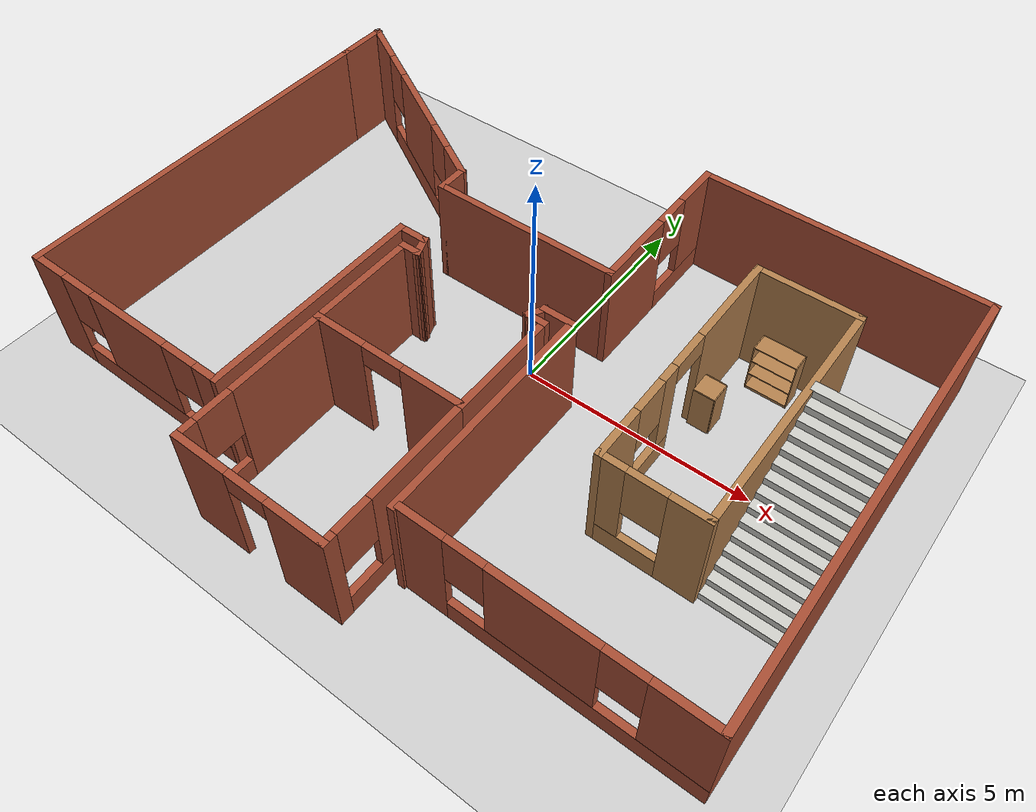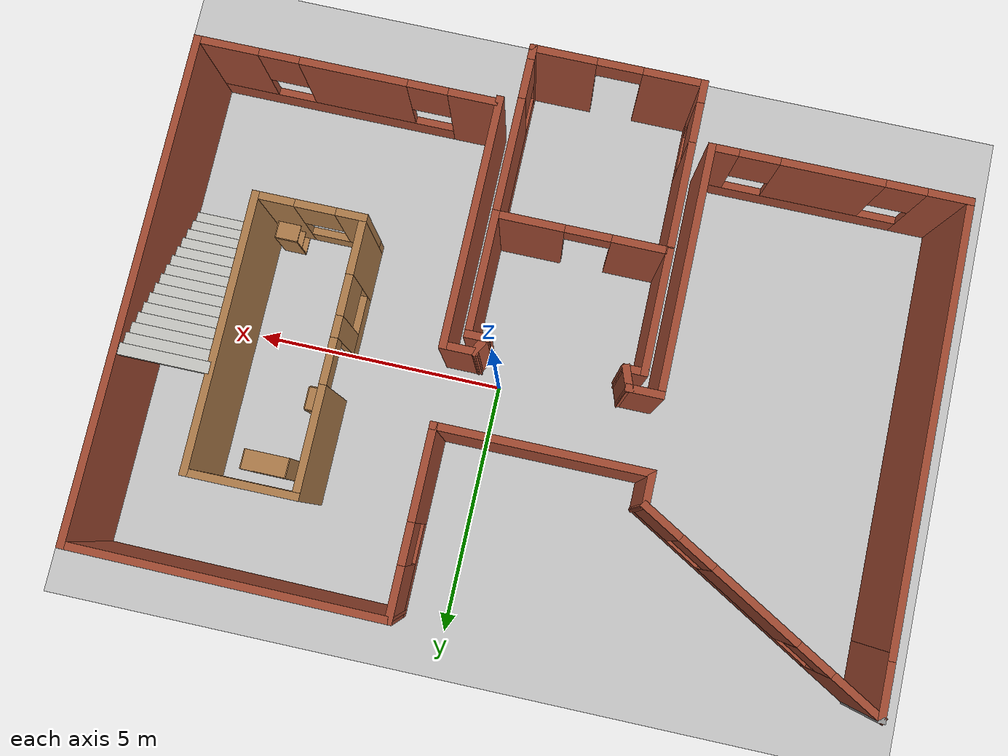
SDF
<sdf version="1.6">
 <world name="default">
  <light name="sun" type="directional">
   <pose>0 0 10 0 -0 0</pose>
   <diffuse>0.8 0.8 0.8 1</diffuse>
   <specular>0.2 0.2 0.2 1</specular>
   <attenuation>
    <range>1000</range>
    <constant>0.9</constant>
    <linear>0.01</linear>
    <quadratic>0.001</quadratic>
   </attenuation>
   <direction>-0.5 0.1 -0.9</direction>
  </light>
  <model name="ground_plane">
   <static>1</static>
   <link name="link">
    <collision name="collision">
     <geometry><plane><normal>0 0 1</normal><size>100 100</size></plane></geometry>
     <surface><friction><ode><mu>100</mu><mu2>50</mu2></ode></friction></surface>
    </collision>
    <visual name="visual">
     <cast_shadows>0</cast_shadows>
     <geometry><plane><normal>0 0 1</normal><size>100 100</size></plane></geometry>
     <material>
      <script><uri>file://media/materials/scripts/gazebo.material</uri><name>Gazebo/Grey</name></script>
     </material>
    </visual>
   </link>
  </model>
  <gravity>0 0 -9.8</gravity>
  <magnetic_field>6e-06 2.3e-05 -4.2e-05</magnetic_field>
  <atmosphere type="adiabatic"/>
  <physics name="default_physics" default="0" type="ode">
   <max_step_size>0.001</max_step_size>
   <real_time_factor>1</real_time_factor>
   <real_time_update_rate>1000</real_time_update_rate>
  </physics>
  <scene><ambient>0.4 0.4 0.4 1</ambient><background>0.7 0.7 0.7 1</background><shadows>1</shadows></scene>
  <spherical_coordinates>
   <surface_model>EARTH_WGS84</surface_model>
   <latitude_deg>0</latitude_deg>
   <longitude_deg>0</longitude_deg>
   <elevation>0</elevation>
   <heading_deg>0</heading_deg>
  </spherical_coordinates>
  <model name="Bad_Design">
   <pose>-0.532956 -0.718389 0 0 -0 0</pose>
   <link name="Stairs_1">
    <visual name="Stairs_1_Visual_0">
     <pose>6.58288 -1.42378 0.083333 0 -0 -3.14159</pose>
     <geometry><box><size>1.74481 0.229787 0.166667</size></box></geometry>
     <material>
      <script><uri>file://media/materials/scripts/gazebo.material</uri><name>Gazebo/CeilingTiled</name></script>
      <ambient>1 1 1 1</ambient>
     </material>
     <meta><layer>0</layer></meta>
    </visual>
    <collision name="Stairs_1_Collision_0">
     <geometry><box><size>1.74481 0.229787 0.166667</size></box></geometry>
     <pose>6.58288 -1.42378 0.083333 0 -0 -3.14159</pose>
    </collision>
    <visual name="Stairs_1_Visual_1">
     <pose>6.58288 -1.194 0.25 0 -0 -3.14159</pose>
     <geometry><box><size>1.74481 0.229787 0.166667</size></box></geometry>
     <material>
      <script><uri>file://media/materials/scripts/gazebo.material</uri><name>Gazebo/CeilingTiled</name></script>
      <ambient>1 1 1 1</ambient>
     </material>
     <meta><layer>0</layer></meta>
    </visual>
    <collision name="Stairs_1_Collision_1">
     <geometry><box><size>1.74481 0.229787 0.166667</size></box></geometry>
     <pose>6.58288 -1.194 0.25 0 -0 -3.14159</pose>
    </collision>
    <visual name="Stairs_1_Visual_2">
     <pose>6.58288 -0.964209 0.416667 0 -0 -3.14159</pose>
     <geometry><box><size>1.74481 0.229787 0.166667</size></box></geometry>
     <material>
      <script><uri>file://media/materials/scripts/gazebo.material</uri><name>Gazebo/CeilingTiled</name></script>
      <ambient>1 1 1 1</ambient>
     </material>
     <meta><layer>0</layer></meta>
    </visual>
    <collision name="Stairs_1_Collision_2">
     <geometry><box><size>1.74481 0.229787 0.166667</size></box></geometry>
     <pose>6.58288 -0.964209 0.416667 0 -0 -3.14159</pose>
    </collision>
    <visual name="Stairs_1_Visual_3">
     <pose>6.58288 -0.734423 0.583333 0 -0 -3.14159</pose>
     <geometry><box><size>1.74481 0.229787 0.166667</size></box></geometry>
     <material>
      <script><uri>file://media/materials/scripts/gazebo.material</uri><name>Gazebo/CeilingTiled</name></script>
      <ambient>1 1 1 1</ambient>
     </material>
     <meta><layer>0</layer></meta>
    </visual>
    <collision name="Stairs_1_Collision_3">
     <geometry><box><size>1.74481 0.229787 0.166667</size></box></geometry>
     <pose>6.58288 -0.734423 0.583333 0 -0 -3.14159</pose>
    </collision>
    <visual name="Stairs_1_Visual_4">
     <pose>6.58288 -0.504636 0.75 0 -0 -3.14159</pose>
     <geometry><box><size>1.74481 0.229787 0.166667</size></box></geometry>
     <material>
      <script><uri>file://media/materials/scripts/gazebo.material</uri><name>Gazebo/CeilingTiled</name></script>
      <ambient>1 1 1 1</ambient>
     </material>
     <meta><layer>0</layer></meta>
    </visual>
    <collision name="Stairs_1_Collision_4">
     <geometry><box><size>1.74481 0.229787 0.166667</size></box></geometry>
     <pose>6.58288 -0.504636 0.75 0 -0 -3.14159</pose>
    </collision>
    <visual name="Stairs_1_Visual_5">
     <pose>6.58288 -0.274849 0.916667 0 -0 -3.14159</pose>
     <geometry><box><size>1.74481 0.229787 0.166667</size></box></geometry>
     <material>
      <script><uri>file://media/materials/scripts/gazebo.material</uri><name>Gazebo/CeilingTiled</name></script>
      <ambient>1 1 1 1</ambient>
     </material>
     <meta><layer>0</layer></meta>
    </visual>
    <collision name="Stairs_1_Collision_5">
     <geometry><box><size>1.74481 0.229787 0.166667</size></box></geometry>
     <pose>6.58288 -0.274849 0.916667 0 -0 -3.14159</pose>
    </collision>
    <visual name="Stairs_1_Visual_6">
     <pose>6.58288 -0.045063 1.08333 0 -0 -3.14159</pose>
     <geometry><box><size>1.74481 0.229787 0.166667</size></box></geometry>
     <material>
      <script><uri>file://media/materials/scripts/gazebo.material</uri><name>Gazebo/CeilingTiled</name></script>
      <ambient>1 1 1 1</ambient>
     </material>
     <meta><layer>0</layer></meta>
    </visual>
    <collision name="Stairs_1_Collision_6">
     <geometry><box><size>1.74481 0.229787 0.166667</size></box></geometry>
     <pose>6.58288 -0.045063 1.08333 0 -0 -3.14159</pose>
    </collision>
    <visual name="Stairs_1_Visual_7">
     <pose>6.58288 0.184724 1.25 0 -0 -3.14159</pose>
     <geometry><box><size>1.74481 0.229787 0.166667</size></box></geometry>
     <material>
      <script><uri>file://media/materials/scripts/gazebo.material</uri><name>Gazebo/CeilingTiled</name></script>
      <ambient>1 1 1 1</ambient>
     </material>
     <meta><layer>0</layer></meta>
    </visual>
    <collision name="Stairs_1_Collision_7">
     <geometry><box><size>1.74481 0.229787 0.166667</size></box></geometry>
     <pose>6.58288 0.184724 1.25 0 -0 -3.14159</pose>
    </collision>
    <visual name="Stairs_1_Visual_8">
     <pose>6.58288 0.414511 1.41667 0 -0 -3.14159</pose>
     <geometry><box><size>1.74481 0.229787 0.166667</size></box></geometry>
     <material>
      <script><uri>file://media/materials/scripts/gazebo.material</uri><name>Gazebo/CeilingTiled</name></script>
      <ambient>1 1 1 1</ambient>
     </material>
     <meta><layer>0</layer></meta>
    </visual>
    <collision name="Stairs_1_Collision_8">
     <geometry><box><size>1.74481 0.229787 0.166667</size></box></geometry>
     <pose>6.58288 0.414511 1.41667 0 -0 -3.14159</pose>
    </collision>
    <visual name="Stairs_1_Visual_9">
     <pose>6.58288 0.644297 1.58333 0 -0 -3.14159</pose>
     <geometry><box><size>1.74481 0.229787 0.166667</size></box></geometry>
     <material>
      <script><uri>file://media/materials/scripts/gazebo.material</uri><name>Gazebo/CeilingTiled</name></script>
      <ambient>1 1 1 1</ambient>
     </material>
     <meta><layer>0</layer></meta>
    </visual>
    <collision name="Stairs_1_Collision_9">
     <geometry><box><size>1.74481 0.229787 0.166667</size></box></geometry>
     <pose>6.58288 0.644297 1.58333 0 -0 -3.14159</pose>
    </collision>
    <visual name="Stairs_1_Visual_10">
     <pose>6.58288 0.874084 1.75 0 -0 -3.14159</pose>
     <geometry><box><size>1.74481 0.229787 0.166667</size></box></geometry>
     <material>
      <script><uri>file://media/materials/scripts/gazebo.material</uri><name>Gazebo/CeilingTiled</name></script>
      <ambient>1 1 1 1</ambient>
     </material>
     <meta><layer>0</layer></meta>
    </visual>
    <collision name="Stairs_1_Collision_10">
     <geometry><box><size>1.74481 0.229787 0.166667</size></box></geometry>
     <pose>6.58288 0.874084 1.75 0 -0 -3.14159</pose>
    </collision>
    <visual name="Stairs_1_Visual_11">
     <pose>6.58288 1.10387 1.91667 0 -0 -3.14159</pose>
     <geometry><box><size>1.74481 0.229787 0.166667</size></box></geometry>
     <material>
      <script><uri>file://media/materials/scripts/gazebo.material</uri><name>Gazebo/CeilingTiled</name></script>
      <ambient>1 1 1 1</ambient>
     </material>
     <meta><layer>0</layer></meta>
    </visual>
    <collision name="Stairs_1_Collision_11">
     <geometry><box><size>1.74481 0.229787 0.166667</size></box></geometry>
     <pose>6.58288 1.10387 1.91667 0 -0 -3.14159</pose>
    </collision>
    <visual name="Stairs_1_Visual_12">
     <pose>6.58288 1.33366 2.08333 0 -0 -3.14159</pose>
     <geometry><box><size>1.74481 0.229787 0.166667</size></box></geometry>
     <material>
      <script><uri>file://media/materials/scripts/gazebo.material</uri><name>Gazebo/CeilingTiled</name></script>
      <ambient>1 1 1 1</ambient>
     </material>
     <meta><layer>0</layer></meta>
    </visual>
    <collision name="Stairs_1_Collision_12">
     <geometry><box><size>1.74481 0.229787 0.166667</size></box></geometry>
     <pose>6.58288 1.33366 2.08333 0 -0 -3.14159</pose>
    </collision>
    <visual name="Stairs_1_Visual_13">
     <pose>6.58288 1.56344 2.25 0 -0 -3.14159</pose>
     <geometry><box><size>1.74481 0.229787 0.166667</size></box></geometry>
     <material>
      <script><uri>file://media/materials/scripts/gazebo.material</uri><name>Gazebo/CeilingTiled</name></script>
      <ambient>1 1 1 1</ambient>
     </material>
     <meta><layer>0</layer></meta>
    </visual>
    <collision name="Stairs_1_Collision_13">
     <geometry><box><size>1.74481 0.229787 0.166667</size></box></geometry>
     <pose>6.58288 1.56344 2.25 0 -0 -3.14159</pose>
    </collision>
    <visual name="Stairs_1_Visual_14">
     <pose>6.58288 1.79323 2.41667 0 -0 -3.14159</pose>
     <geometry><box><size>1.74481 0.229787 0.166667</size></box></geometry>
     <material>
      <script><uri>file://media/materials/scripts/gazebo.material</uri><name>Gazebo/CeilingTiled</name></script>
      <ambient>1 1 1 1</ambient>
     </material>
     <meta><layer>0</layer></meta>
    </visual>
    <collision name="Stairs_1_Collision_14">
     <geometry><box><size>1.74481 0.229787 0.166667</size></box></geometry>
     <pose>6.58288 1.79323 2.41667 0 -0 -3.14159</pose>
    </collision>
   </link>
   <link name="Wall_10">
    <collision name="Wall_10_Collision">
     <geometry><box><size>2.5 0.15 2.5</size></box></geometry>
     <pose>0 0 1.25 0 -0 0</pose>
    </collision>
    <visual name="Wall_10_Visual">
     <pose>0 0 1.25 0 -0 0</pose>
     <geometry><box><size>2.5 0.15 2.5</size></box></geometry>
     <material>
      <script><uri>file://media/materials/scripts/gazebo.material</uri><name>Gazebo/Bricks</name></script>
      <ambient>1 1 1 1</ambient>
     </material>
     <meta><layer>0</layer></meta>
    </visual>
    <pose>-2.15842 -1.02464 0 0 0 -1.5708</pose>
   </link>
   <link name="Wall_11">
    <pose>-0.483422 -2.19964 0 0 -0 0</pose>
    <visual name="Wall_11_Visual_0">
     <pose>-1.15657 0 1.25 0 -0 0</pose>
     <geometry><box><size>1.18686 0.15 2.5</size></box></geometry>
     <material>
      <script><uri>file://media/materials/scripts/gazebo.material</uri><name>Gazebo/Bricks</name></script>
      <ambient>1 1 1 1</ambient>
     </material>
     <meta><layer>0</layer></meta>
    </visual>
    <collision name="Wall_11_Collision_0">
     <geometry><box><size>1.18686 0.15 2.5</size></box></geometry>
     <pose>-1.15657 0 1.25 0 -0 0</pose>
    </collision>
    <visual name="Wall_11_Visual_1">
     <pose>1.04343 0 1.25 0 -0 0</pose>
     <geometry><box><size>1.41314 0.15 2.5</size></box></geometry>
     <material>
      <script><uri>file://media/materials/scripts/gazebo.material</uri><name>Gazebo/Bricks</name></script>
      <ambient>1 1 1 1</ambient>
     </material>
     <meta><layer>0</layer></meta>
    </visual>
    <collision name="Wall_11_Collision_1">
     <geometry><box><size>1.41314 0.15 2.5</size></box></geometry>
     <pose>1.04343 0 1.25 0 -0 0</pose>
    </collision>
    <visual name="Wall_11_Visual_2">
     <pose>-0.113144 0 2.25 0 -0 0</pose>
     <geometry><box><size>0.9 0.15 0.5</size></box></geometry>
     <material>
      <script><uri>file://media/materials/scripts/gazebo.material</uri><name>Gazebo/Bricks</name></script>
      <ambient>1 1 1 1</ambient>
     </material>
     <meta><layer>0</layer></meta>
    </visual>
    <collision name="Wall_11_Collision_2">
     <geometry><box><size>0.9 0.15 0.5</size></box></geometry>
     <pose>-0.113144 0 2.25 0 -0 0</pose>
    </collision>
   </link>
   <link name="Wall_12">
    <collision name="Wall_12_Collision">
     <geometry><box><size>2.5 0.15 2.5</size></box></geometry>
     <pose>0 0 1.25 0 -0 0</pose>
    </collision>
    <visual name="Wall_12_Visual">
     <pose>0 0 1.25 0 -0 0</pose>
     <geometry><box><size>2.5 0.15 2.5</size></box></geometry>
     <material>
      <script><uri>file://media/materials/scripts/gazebo.material</uri><name>Gazebo/Bricks</name></script>
      <ambient>1 1 1 1</ambient>
     </material>
     <meta><layer>0</layer></meta>
    </visual>
    <pose>1.19158 -1.02464 0 0 -0 1.5708</pose>
   </link>
   <link name="Wall_13">
    <collision name="Wall_13_Collision">
     <geometry><box><size>0.5 0.15 2.5</size></box></geometry>
     <pose>0 0 1.25 0 -0 0</pose>
    </collision>
    <visual name="Wall_13_Visual">
     <pose>0 0 1.25 0 -0 0</pose>
     <geometry><box><size>0.5 0.15 2.5</size></box></geometry>
     <material>
      <script><uri>file://media/materials/scripts/gazebo.material</uri><name>Gazebo/Bricks</name></script>
      <ambient>1 1 1 1</ambient>
     </material>
     <meta><layer>0</layer></meta>
    </visual>
    <pose>1.01658 0.150362 0 0 -0 3.14159</pose>
   </link>
   <link name="Wall_16">
    <collision name="Wall_16_Collision">
     <geometry><box><size>0.492606 0.15 2.5</size></box></geometry>
     <pose>0 0 1.25 0 -0 0</pose>
    </collision>
    <visual name="Wall_16_Visual">
     <pose>0 0 1.25 0 -0 0</pose>
     <geometry><box><size>0.492606 0.15 2.5</size></box></geometry>
     <material>
      <script><uri>file://media/materials/scripts/gazebo.material</uri><name>Gazebo/Bricks</name></script>
      <ambient>1 1 1 1</ambient>
     </material>
     <meta><layer>0</layer></meta>
    </visual>
    <pose>0.927449 0.298587 0 0 -0 1.04572</pose>
   </link>
   <link name="Wall_17">
    <collision name="Wall_17_Collision">
     <geometry><box><size>0.75 0.15 2.5</size></box></geometry>
     <pose>0 0 1.25 0 -0 0</pose>
    </collision>
    <visual name="Wall_17_Visual">
     <pose>0 0 1.25 0 -0 0</pose>
     <geometry><box><size>0.75 0.15 2.5</size></box></geometry>
     <material>
      <script><uri>file://media/materials/scripts/gazebo.material</uri><name>Gazebo/Bricks</name></script>
      <ambient>1 1 1 1</ambient>
     </material>
     <meta><layer>0</layer></meta>
    </visual>
    <pose>1.29811 0.446813 0 0 -0 0</pose>
   </link>
   <link name="Wall_19">
    <pose>4.61658 -4.34964 0 0 -0 0</pose>
    <visual name="Wall_19_Visual_0">
     <pose>-2.51106 0 1.25 0 -0 0</pose>
     <geometry><box><size>0.977883 0.15 2.5</size></box></geometry>
     <material>
      <script><uri>file://media/materials/scripts/gazebo.material</uri><name>Gazebo/Bricks</name></script>
      <ambient>1 1 1 1</ambient>
     </material>
     <meta><layer>0</layer></meta>
    </visual>
    <collision name="Wall_19_Collision_0">
     <geometry><box><size>0.977883 0.15 2.5</size></box></geometry>
     <pose>-2.51106 0 1.25 0 -0 0</pose>
    </collision>
    <visual name="Wall_19_Visual_1">
     <pose>0.488942 0 0.25 0 -0 0</pose>
     <geometry><box><size>5.02212 0.15 0.5</size></box></geometry>
     <material>
      <script><uri>file://media/materials/scripts/gazebo.material</uri><name>Gazebo/Bricks</name></script>
      <ambient>1 1 1 1</ambient>
     </material>
     <meta><layer>0</layer></meta>
    </visual>
    <collision name="Wall_19_Collision_1">
     <geometry><box><size>5.02212 0.15 0.5</size></box></geometry>
     <pose>0.488942 0 0.25 0 -0 0</pose>
    </collision>
    <visual name="Wall_19_Visual_2">
     <pose>-0.159106 0 1.5 0 -0 0</pose>
     <geometry><box><size>2.12602 0.15 2</size></box></geometry>
     <material>
      <script><uri>file://media/materials/scripts/gazebo.material</uri><name>Gazebo/Bricks</name></script>
      <ambient>1 1 1 1</ambient>
     </material>
     <meta><layer>0</layer></meta>
    </visual>
    <collision name="Wall_19_Collision_2">
     <geometry><box><size>2.12602 0.15 2</size></box></geometry>
     <pose>-0.159106 0 1.5 0 -0 0</pose>
    </collision>
    <visual name="Wall_19_Visual_3">
     <pose>2.35195 0 1.5 0 -0 0</pose>
     <geometry><box><size>1.29609 0.15 2</size></box></geometry>
     <material>
      <script><uri>file://media/materials/scripts/gazebo.material</uri><name>Gazebo/Bricks</name></script>
      <ambient>1 1 1 1</ambient>
     </material>
     <meta><layer>0</layer></meta>
    </visual>
    <collision name="Wall_19_Collision_3">
     <geometry><box><size>1.29609 0.15 2</size></box></geometry>
     <pose>2.35195 0 1.5 0 -0 0</pose>
    </collision>
    <visual name="Wall_19_Visual_4">
     <pose>-1.62212 0 1.9 0 -0 0</pose>
     <geometry><box><size>0.8 0.15 1.2</size></box></geometry>
     <material>
      <script><uri>file://media/materials/scripts/gazebo.material</uri><name>Gazebo/Bricks</name></script>
      <ambient>1 1 1 1</ambient>
     </material>
     <meta><layer>0</layer></meta>
    </visual>
    <collision name="Wall_19_Collision_4">
     <geometry><box><size>0.8 0.15 1.2</size></box></geometry>
     <pose>-1.62212 0 1.9 0 -0 0</pose>
    </collision>
    <visual name="Wall_19_Visual_5">
     <pose>1.30391 0 1.9 0 -0 0</pose>
     <geometry><box><size>0.8 0.15 1.2</size></box></geometry>
     <material>
      <script><uri>file://media/materials/scripts/gazebo.material</uri><name>Gazebo/Bricks</name></script>
      <ambient>1 1 1 1</ambient>
     </material>
     <meta><layer>0</layer></meta>
    </visual>
    <collision name="Wall_19_Collision_5">
     <geometry><box><size>0.8 0.15 1.2</size></box></geometry>
     <pose>1.30391 0 1.9 0 -0 0</pose>
    </collision>
   </link>
   <link name="Wall_20">
    <collision name="Wall_20_Collision">
     <geometry><box><size>10 0.15 2.5</size></box></geometry>
     <pose>0 0 1.25 0 -0 0</pose>
    </collision>
    <visual name="Wall_20_Visual">
     <pose>0 0 1.25 0 -0 0</pose>
     <geometry><box><size>10 0.15 2.5</size></box></geometry>
     <material>
      <script><uri>file://media/materials/scripts/gazebo.material</uri><name>Gazebo/Bricks</name></script>
      <ambient>1 1 1 1</ambient>
     </material>
     <meta><layer>0</layer></meta>
    </visual>
    <pose>7.54158 0.575362 0 0 -0 1.5708</pose>
   </link>
   <link name="Wall_27">
    <collision name="Wall_27_Collision">
     <geometry><box><size>0.522524 0.15 2.5</size></box></geometry>
     <pose>0 0 1.25 0 -0 0</pose>
    </collision>
    <visual name="Wall_27_Visual">
     <pose>0 0 1.25 0 -0 0</pose>
     <geometry><box><size>0.522524 0.15 2.5</size></box></geometry>
     <material>
      <script><uri>file://media/materials/scripts/gazebo.material</uri><name>Gazebo/Bricks</name></script>
      <ambient>1 1 1 1</ambient>
     </material>
     <meta><layer>0</layer></meta>
    </visual>
    <pose>-1.87221 0.325362 0 0 0 -1.22128</pose>
   </link>
   <link name="Wall_30">
    <collision name="Wall_30_Collision">
     <geometry><box><size>5 0.15 2.5</size></box></geometry>
     <pose>0 0 1.25 0 -0 0</pose>
    </collision>
    <visual name="Wall_30_Visual">
     <pose>0 0 1.25 0 -0 0</pose>
     <geometry><box><size>5 0.15 2.5</size></box></geometry>
     <material>
      <script><uri>file://media/materials/scripts/gazebo.material</uri><name>Gazebo/Bricks</name></script>
      <ambient>1 1 1 1</ambient>
     </material>
     <meta><layer>0</layer></meta>
    </visual>
    <pose>-2.53599 -1.92464 0 0 0 -1.5708</pose>
   </link>
   <link name="Wall_35">
    <collision name="Wall_35_Collision">
     <geometry><box><size>5 0.15 2.5</size></box></geometry>
     <pose>0 0 1.25 0 -0 0</pose>
    </collision>
    <visual name="Wall_35_Visual">
     <pose>0 0 1.25 0 -0 0</pose>
     <geometry><box><size>5 0.15 2.5</size></box></geometry>
     <material>
      <script><uri>file://media/materials/scripts/gazebo.material</uri><name>Gazebo/Bricks</name></script>
      <ambient>1 1 1 1</ambient>
     </material>
     <meta><layer>0</layer></meta>
    </visual>
    <pose>1.59811 -1.97819 0 0 0 -1.5708</pose>
   </link>
   <link name="Wall_37">
    <collision name="Wall_37_Collision">
     <geometry><box><size>8.75 0.15 2.5</size></box></geometry>
     <pose>0 0 1.25 0 -0 0</pose>
    </collision>
    <visual name="Wall_37_Visual">
     <pose>0 0 1.25 0 -0 0</pose>
     <geometry><box><size>8.75 0.15 2.5</size></box></geometry>
     <material>
      <script><uri>file://media/materials/scripts/gazebo.material</uri><name>Gazebo/Bricks</name></script>
      <ambient>1 1 1 1</ambient>
     </material>
     <meta><layer>0</layer></meta>
    </visual>
    <pose>-7.51472 -0.050957 0 0 -0 1.5708</pose>
   </link>
   <link name="Wall_40">
    <collision name="Wall_40_Collision">
     <geometry><box><size>0.15 0.15 2.5</size></box></geometry>
     <pose>0 0 1.25 0 -0 0</pose>
    </collision>
    <visual name="Wall_40_Visual">
     <pose>0 0 1.25 0 -0 0</pose>
     <geometry><box><size>0.15 0.15 2.5</size></box></geometry>
     <material>
      <script><uri>file://media/materials/scripts/gazebo.material</uri><name>Gazebo/Grey</name></script>
      <ambient>1 1 1 1</ambient>
     </material>
     <meta><layer>0</layer></meta>
    </visual>
    <pose>-7.51472 5.34904 0 0 -0 0</pose>
   </link>
   <link name="Wall_44">
    <collision name="Wall_44_Collision">
     <geometry><box><size>1.25 0.15 2.5</size></box></geometry>
     <pose>0 0 1.25 0 -0 0</pose>
    </collision>
    <visual name="Wall_44_Visual">
     <pose>0 0 1.25 0 -0 0</pose>
     <geometry><box><size>1.25 0.15 2.5</size></box></geometry>
     <material>
      <script><uri>file://media/materials/scripts/gazebo.material</uri><name>Gazebo/Bricks</name></script>
      <ambient>1 1 1 1</ambient>
     </material>
     <meta><layer>0</layer></meta>
    </visual>
    <pose>-7.51472 4.79904 0 0 -0 1.5708</pose>
   </link>
   <link name="Wall_45">
    <pose>-5.08985 3.94904 0 0 0 -0.523599</pose>
    <visual name="Wall_45_Visual_0">
     <pose>-2.27507 0 1.25 0 -0 0</pose>
     <geometry><box><size>1.19987 0.15 2.5</size></box></geometry>
     <material>
      <script><uri>file://media/materials/scripts/gazebo.material</uri><name>Gazebo/Bricks</name></script>
      <ambient>1 1 1 1</ambient>
     </material>
     <meta><layer>0</layer></meta>
    </visual>
    <collision name="Wall_45_Collision_0">
     <geometry><box><size>1.19987 0.15 2.5</size></box></geometry>
     <pose>-2.27507 0 1.25 0 -0 0</pose>
    </collision>
    <visual name="Wall_45_Visual_1">
     <pose>0.599933 0 0.25 0 -0 0</pose>
     <geometry><box><size>4.55013 0.15 0.5</size></box></geometry>
     <material>
      <script><uri>file://media/materials/scripts/gazebo.material</uri><name>Gazebo/Bricks</name></script>
      <ambient>1 1 1 1</ambient>
     </material>
     <meta><layer>0</layer></meta>
    </visual>
    <collision name="Wall_45_Collision_1">
     <geometry><box><size>4.55013 0.15 0.5</size></box></geometry>
     <pose>0.599933 0 0.25 0 -0 0</pose>
    </collision>
    <visual name="Wall_45_Visual_2">
     <pose>0.130346 0 1.5 0 -0 0</pose>
     <geometry><box><size>2.01096 0.15 2</size></box></geometry>
     <material>
      <script><uri>file://media/materials/scripts/gazebo.material</uri><name>Gazebo/Bricks</name></script>
      <ambient>1 1 1 1</ambient>
     </material>
     <meta><layer>0</layer></meta>
    </visual>
    <collision name="Wall_45_Collision_2">
     <geometry><box><size>2.01096 0.15 2</size></box></geometry>
     <pose>0.130346 0 1.5 0 -0 0</pose>
    </collision>
    <visual name="Wall_45_Visual_3">
     <pose>2.40541 0 1.5 0 -0 0</pose>
     <geometry><box><size>0.939175 0.15 2</size></box></geometry>
     <material>
      <script><uri>file://media/materials/scripts/gazebo.material</uri><name>Gazebo/Bricks</name></script>
      <ambient>1 1 1 1</ambient>
     </material>
     <meta><layer>0</layer></meta>
    </visual>
    <collision name="Wall_45_Collision_3">
     <geometry><box><size>0.939175 0.15 2</size></box></geometry>
     <pose>2.40541 0 1.5 0 -0 0</pose>
    </collision>
    <visual name="Wall_45_Visual_4">
     <pose>-1.27513 0 1.9 0 -0 0</pose>
     <geometry><box><size>0.8 0.15 1.2</size></box></geometry>
     <material>
      <script><uri>file://media/materials/scripts/gazebo.material</uri><name>Gazebo/Bricks</name></script>
      <ambient>1 1 1 1</ambient>
     </material>
     <meta><layer>0</layer></meta>
    </visual>
    <collision name="Wall_45_Collision_4">
     <geometry><box><size>0.8 0.15 1.2</size></box></geometry>
     <pose>-1.27513 0 1.9 0 -0 0</pose>
    </collision>
    <visual name="Wall_45_Visual_5">
     <pose>1.53582 0 1.9 0 -0 0</pose>
     <geometry><box><size>0.8 0.15 1.2</size></box></geometry>
     <material>
      <script><uri>file://media/materials/scripts/gazebo.material</uri><name>Gazebo/Bricks</name></script>
      <ambient>1 1 1 1</ambient>
     </material>
     <meta><layer>0</layer></meta>
    </visual>
    <collision name="Wall_45_Collision_5">
     <geometry><box><size>0.8 0.15 1.2</size></box></geometry>
     <pose>1.53582 0 1.9 0 -0 0</pose>
    </collision>
   </link>
   <link name="Wall_46">
    <collision name="Wall_46_Collision">
     <geometry><box><size>0.75 0.15 2.5</size></box></geometry>
     <pose>0 0 1.25 0 -0 0</pose>
    </collision>
    <visual name="Wall_46_Visual">
     <pose>0 0 1.25 0 -0 0</pose>
     <geometry><box><size>0.75 0.15 2.5</size></box></geometry>
     <material>
      <script><uri>file://media/materials/scripts/gazebo.material</uri><name>Gazebo/Bricks</name></script>
      <ambient>1 1 1 1</ambient>
     </material>
     <meta><layer>0</layer></meta>
    </visual>
    <pose>-2.66498 2.24904 0 0 0 -1.5708</pose>
   </link>
   <link name="Wall_47">
    <collision name="Wall_47_Collision">
     <geometry><box><size>4.25 0.15 2.5</size></box></geometry>
     <pose>0 0 1.25 0 -0 0</pose>
    </collision>
    <visual name="Wall_47_Visual">
     <pose>0 0 1.25 0 -0 0</pose>
     <geometry><box><size>4.25 0.15 2.5</size></box></geometry>
     <material>
      <script><uri>file://media/materials/scripts/gazebo.material</uri><name>Gazebo/Bricks</name></script>
      <ambient>1 1 1 1</ambient>
     </material>
     <meta><layer>0</layer></meta>
    </visual>
    <pose>-0.61498 1.94904 0 0 -0 0</pose>
   </link>
   <link name="Wall_48">
    <pose>1.43502 3.74904 0 0 -0 1.5708</pose>
    <visual name="Wall_48_Visual_0">
     <pose>-0.937432 0 1.25 0 -0 0</pose>
     <geometry><box><size>1.87514 0.15 2.5</size></box></geometry>
     <material>
      <script><uri>file://media/materials/scripts/gazebo.material</uri><name>Gazebo/Bricks</name></script>
      <ambient>1 1 1 1</ambient>
     </material>
     <meta><layer>0</layer></meta>
    </visual>
    <collision name="Wall_48_Collision_0">
     <geometry><box><size>1.87514 0.15 2.5</size></box></geometry>
     <pose>-0.937432 0 1.25 0 -0 0</pose>
    </collision>
    <visual name="Wall_48_Visual_1">
     <pose>0.937568 0 0.25 0 -0 0</pose>
     <geometry><box><size>1.87486 0.15 0.5</size></box></geometry>
     <material>
      <script><uri>file://media/materials/scripts/gazebo.material</uri><name>Gazebo/Bricks</name></script>
      <ambient>1 1 1 1</ambient>
     </material>
     <meta><layer>0</layer></meta>
    </visual>
    <collision name="Wall_48_Collision_1">
     <geometry><box><size>1.87486 0.15 0.5</size></box></geometry>
     <pose>0.937568 0 0.25 0 -0 0</pose>
    </collision>
    <visual name="Wall_48_Visual_2">
     <pose>1.33757 0 1.5 0 -0 0</pose>
     <geometry><box><size>1.07486 0.15 2</size></box></geometry>
     <material>
      <script><uri>file://media/materials/scripts/gazebo.material</uri><name>Gazebo/Bricks</name></script>
      <ambient>1 1 1 1</ambient>
     </material>
     <meta><layer>0</layer></meta>
    </visual>
    <collision name="Wall_48_Collision_2">
     <geometry><box><size>1.07486 0.15 2</size></box></geometry>
     <pose>1.33757 0 1.5 0 -0 0</pose>
    </collision>
    <visual name="Wall_48_Visual_3">
     <pose>0.400137 0 1.9 0 -0 0</pose>
     <geometry><box><size>0.8 0.15 1.2</size></box></geometry>
     <material>
      <script><uri>file://media/materials/scripts/gazebo.material</uri><name>Gazebo/Bricks</name></script>
      <ambient>1 1 1 1</ambient>
     </material>
     <meta><layer>0</layer></meta>
    </visual>
    <collision name="Wall_48_Collision_3">
     <geometry><box><size>0.8 0.15 1.2</size></box></geometry>
     <pose>0.400137 0 1.9 0 -0 0</pose>
    </collision>
   </link>
   <link name="Wall_49">
    <collision name="Wall_49_Collision">
     <geometry><box><size>6.25675 0.15 2.5</size></box></geometry>
     <pose>0 0 1.25 0 -0 0</pose>
    </collision>
    <visual name="Wall_49_Visual">
     <pose>0 0 1.25 0 -0 0</pose>
     <geometry><box><size>6.25675 0.15 2.5</size></box></geometry>
     <material>
      <script><uri>file://media/materials/scripts/gazebo.material</uri><name>Gazebo/Bricks</name></script>
      <ambient>1 1 1 1</ambient>
     </material>
     <meta><layer>0</layer></meta>
    </visual>
    <pose>4.4883 5.5247 0 0 0 -0.007972</pose>
   </link>
   <link name="Wall_5">
    <pose>-5.08972 -4.35096 0 0 -0 0</pose>
    <visual name="Wall_5_Visual_0">
     <pose>-2.04964 0 1.25 0 -0 0</pose>
     <geometry><box><size>0.900714 0.15 2.5</size></box></geometry>
     <material>
      <script><uri>file://media/materials/scripts/gazebo.material</uri><name>Gazebo/Bricks</name></script>
      <ambient>1 1 1 1</ambient>
     </material>
     <meta><layer>0</layer></meta>
    </visual>
    <collision name="Wall_5_Collision_0">
     <geometry><box><size>0.900714 0.15 2.5</size></box></geometry>
     <pose>-2.04964 0 1.25 0 -0 0</pose>
    </collision>
    <visual name="Wall_5_Visual_1">
     <pose>0.450357 0 0.25 0 -0 0</pose>
     <geometry><box><size>4.09929 0.15 0.5</size></box></geometry>
     <material>
      <script><uri>file://media/materials/scripts/gazebo.material</uri><name>Gazebo/Bricks</name></script>
      <ambient>1 1 1 1</ambient>
     </material>
     <meta><layer>0</layer></meta>
    </visual>
    <collision name="Wall_5_Collision_1">
     <geometry><box><size>4.09929 0.15 0.5</size></box></geometry>
     <pose>0.450357 0 0.25 0 -0 0</pose>
    </collision>
    <visual name="Wall_5_Visual_2">
     <pose>0.210525 0 1.5 0 -0 0</pose>
     <geometry><box><size>2.01962 0.15 2</size></box></geometry>
     <material>
      <script><uri>file://media/materials/scripts/gazebo.material</uri><name>Gazebo/Bricks</name></script>
      <ambient>1 1 1 1</ambient>
     </material>
     <meta><layer>0</layer></meta>
    </visual>
    <collision name="Wall_5_Collision_2">
     <geometry><box><size>2.01962 0.15 2</size></box></geometry>
     <pose>0.210525 0 1.5 0 -0 0</pose>
    </collision>
    <visual name="Wall_5_Visual_3">
     <pose>2.26017 0 1.5 0 -0 0</pose>
     <geometry><box><size>0.479664 0.15 2</size></box></geometry>
     <material>
      <script><uri>file://media/materials/scripts/gazebo.material</uri><name>Gazebo/Bricks</name></script>
      <ambient>1 1 1 1</ambient>
     </material>
     <meta><layer>0</layer></meta>
    </visual>
    <collision name="Wall_5_Collision_3">
     <geometry><box><size>0.479664 0.15 2</size></box></geometry>
     <pose>2.26017 0 1.5 0 -0 0</pose>
    </collision>
    <visual name="Wall_5_Visual_4">
     <pose>-1.19929 0 1.9 0 -0 0</pose>
     <geometry><box><size>0.8 0.15 1.2</size></box></geometry>
     <material>
      <script><uri>file://media/materials/scripts/gazebo.material</uri><name>Gazebo/Bricks</name></script>
      <ambient>1 1 1 1</ambient>
     </material>
     <meta><layer>0</layer></meta>
    </visual>
    <collision name="Wall_5_Collision_4">
     <geometry><box><size>0.8 0.15 1.2</size></box></geometry>
     <pose>-1.19929 0 1.9 0 -0 0</pose>
    </collision>
    <visual name="Wall_5_Visual_5">
     <pose>1.62034 0 1.9 0 -0 0</pose>
     <geometry><box><size>0.8 0.15 1.2</size></box></geometry>
     <material>
      <script><uri>file://media/materials/scripts/gazebo.material</uri><name>Gazebo/Bricks</name></script>
      <ambient>1 1 1 1</ambient>
     </material>
     <meta><layer>0</layer></meta>
    </visual>
    <collision name="Wall_5_Collision_5">
     <geometry><box><size>0.8 0.15 1.2</size></box></geometry>
     <pose>1.62034 0 1.9 0 -0 0</pose>
    </collision>
   </link>
   <link name="Wall_52">
    <collision name="Wall_52_Collision">
     <geometry><box><size>2.25 0.15 2.5</size></box></geometry>
     <pose>0 0 1.25 0 -0 0</pose>
    </collision>
    <visual name="Wall_52_Visual">
     <pose>0 0 1.25 0 -0 0</pose>
     <geometry><box><size>2.25 0.15 2.5</size></box></geometry>
     <material>
      <script><uri>file://media/materials/scripts/gazebo.material</uri><name>Gazebo/Wood</name></script>
      <ambient>1 1 1 1</ambient>
     </material>
     <meta><layer>0</layer></meta>
    </visual>
    <pose>4.64982 3.75221 0 0 -0 0</pose>
   </link>
   <link name="Wall_53">
    <collision name="Wall_53_Collision">
     <geometry><box><size>5.5 0.15 2.5</size></box></geometry>
     <pose>0 0 1.25 0 -0 0</pose>
    </collision>
    <visual name="Wall_53_Visual">
     <pose>0 0 1.25 0 -0 0</pose>
     <geometry><box><size>5.5 0.15 2.5</size></box></geometry>
     <material>
      <script><uri>file://media/materials/scripts/gazebo.material</uri><name>Gazebo/Wood</name></script>
      <ambient>1 1 1 1</ambient>
     </material>
     <meta><layer>0</layer></meta>
    </visual>
    <pose>5.69982 1.07721 0 0 0 -1.5708</pose>
   </link>
   <link name="Wall_54">
    <pose>4.64982 -1.59779 0 0 -0 3.14159</pose>
    <visual name="Wall_54_Visual_0">
     <pose>-0.706225 0 1.25 0 -0 0</pose>
     <geometry><box><size>0.837549 0.15 2.5</size></box></geometry>
     <material>
      <script><uri>file://media/materials/scripts/gazebo.material</uri><name>Gazebo/Wood</name></script>
      <ambient>1 1 1 1</ambient>
     </material>
     <meta><layer>0</layer></meta>
    </visual>
    <collision name="Wall_54_Collision_0">
     <geometry><box><size>0.837549 0.15 2.5</size></box></geometry>
     <pose>-0.706225 0 1.25 0 -0 0</pose>
    </collision>
    <visual name="Wall_54_Visual_1">
     <pose>0.418775 0 0.25 0 -0 0</pose>
     <geometry><box><size>1.41245 0.15 0.5</size></box></geometry>
     <material>
      <script><uri>file://media/materials/scripts/gazebo.material</uri><name>Gazebo/Wood</name></script>
      <ambient>1 1 1 1</ambient>
     </material>
     <meta><layer>0</layer></meta>
    </visual>
    <collision name="Wall_54_Collision_1">
     <geometry><box><size>1.41245 0.15 0.5</size></box></geometry>
     <pose>0.418775 0 0.25 0 -0 0</pose>
    </collision>
    <visual name="Wall_54_Visual_2">
     <pose>0.818775 0 1.5 0 -0 0</pose>
     <geometry><box><size>0.612451 0.15 2</size></box></geometry>
     <material>
      <script><uri>file://media/materials/scripts/gazebo.material</uri><name>Gazebo/Wood</name></script>
      <ambient>1 1 1 1</ambient>
     </material>
     <meta><layer>0</layer></meta>
    </visual>
    <collision name="Wall_54_Collision_2">
     <geometry><box><size>0.612451 0.15 2</size></box></geometry>
     <pose>0.818775 0 1.5 0 -0 0</pose>
    </collision>
    <visual name="Wall_54_Visual_3">
     <pose>0.112549 0 1.9 0 -0 0</pose>
     <geometry><box><size>0.8 0.15 1.2</size></box></geometry>
     <material>
      <script><uri>file://media/materials/scripts/gazebo.material</uri><name>Gazebo/Wood</name></script>
      <ambient>1 1 1 1</ambient>
     </material>
     <meta><layer>0</layer></meta>
    </visual>
    <collision name="Wall_54_Collision_3">
     <geometry><box><size>0.8 0.15 1.2</size></box></geometry>
     <pose>0.112549 0 1.9 0 -0 0</pose>
    </collision>
   </link>
   <link name="Wall_55">
    <pose>3.59982 1.07721 0 0 -0 1.5708</pose>
    <visual name="Wall_55_Visual_0">
     <pose>-2.15373 0 1.25 0 -0 0</pose>
     <geometry><box><size>1.19254 0.15 2.5</size></box></geometry>
     <material>
      <script><uri>file://media/materials/scripts/gazebo.material</uri><name>Gazebo/Wood</name></script>
      <ambient>1 1 1 1</ambient>
     </material>
     <meta><layer>0</layer></meta>
    </visual>
    <collision name="Wall_55_Collision_0">
     <geometry><box><size>1.19254 0.15 2.5</size></box></geometry>
     <pose>-2.15373 0 1.25 0 -0 0</pose>
    </collision>
    <visual name="Wall_55_Visual_1">
     <pose>1.65968 0 1.25 0 -0 0</pose>
     <geometry><box><size>2.18065 0.15 2.5</size></box></geometry>
     <material>
      <script><uri>file://media/materials/scripts/gazebo.material</uri><name>Gazebo/Wood</name></script>
      <ambient>1 1 1 1</ambient>
     </material>
     <meta><layer>0</layer></meta>
    </visual>
    <collision name="Wall_55_Collision_1">
     <geometry><box><size>2.18065 0.15 2.5</size></box></geometry>
     <pose>1.65968 0 1.25 0 -0 0</pose>
    </collision>
    <visual name="Wall_55_Visual_2">
     <pose>-0.944053 0 0.25 0 -0 0</pose>
     <geometry><box><size>1.22681 0.15 0.5</size></box></geometry>
     <material>
      <script><uri>file://media/materials/scripts/gazebo.material</uri><name>Gazebo/Wood</name></script>
      <ambient>1 1 1 1</ambient>
     </material>
     <meta><layer>0</layer></meta>
    </visual>
    <collision name="Wall_55_Collision_2">
     <geometry><box><size>1.22681 0.15 0.5</size></box></geometry>
     <pose>-0.944053 0 0.25 0 -0 0</pose>
    </collision>
    <visual name="Wall_55_Visual_3">
     <pose>-0.544053 0 1.5 0 -0 0</pose>
     <geometry><box><size>0.42681 0.15 2</size></box></geometry>
     <material>
      <script><uri>file://media/materials/scripts/gazebo.material</uri><name>Gazebo/Wood</name></script>
      <ambient>1 1 1 1</ambient>
     </material>
     <meta><layer>0</layer></meta>
    </visual>
    <collision name="Wall_55_Collision_3">
     <geometry><box><size>0.42681 0.15 2</size></box></geometry>
     <pose>-0.544053 0 1.5 0 -0 0</pose>
    </collision>
    <visual name="Wall_55_Visual_4">
     <pose>-1.15746 0 1.9 0 -0 0</pose>
     <geometry><box><size>0.8 0.15 1.2</size></box></geometry>
     <material>
      <script><uri>file://media/materials/scripts/gazebo.material</uri><name>Gazebo/Wood</name></script>
      <ambient>1 1 1 1</ambient>
     </material>
     <meta><layer>0</layer></meta>
    </visual>
    <collision name="Wall_55_Collision_4">
     <geometry><box><size>0.8 0.15 1.2</size></box></geometry>
     <pose>-1.15746 0 1.9 0 -0 0</pose>
    </collision>
    <visual name="Wall_55_Visual_5">
     <pose>0.119352 0 2.25 0 -0 0</pose>
     <geometry><box><size>0.9 0.15 0.5</size></box></geometry>
     <material>
      <script><uri>file://media/materials/scripts/gazebo.material</uri><name>Gazebo/Wood</name></script>
      <ambient>1 1 1 1</ambient>
     </material>
     <meta><layer>0</layer></meta>
    </visual>
    <collision name="Wall_55_Collision_5">
     <geometry><box><size>0.9 0.15 0.5</size></box></geometry>
     <pose>0.119352 0 2.25 0 -0 0</pose>
    </collision>
   </link>
   <link name="Wall_57">
    <pose>-2.15842 -3.87464 0 0 0 -1.5708</pose>
    <visual name="Wall_57_Visual_0">
     <pose>-0.631376 0 1.25 0 -0 0</pose>
     <geometry><box><size>2.23725 0.15 2.5</size></box></geometry>
     <material>
      <script><uri>file://media/materials/scripts/gazebo.material</uri><name>Gazebo/Bricks</name></script>
      <ambient>1 1 1 1</ambient>
     </material>
     <meta><layer>0</layer></meta>
    </visual>
    <collision name="Wall_57_Collision_0">
     <geometry><box><size>2.23725 0.15 2.5</size></box></geometry>
     <pose>-0.631376 0 1.25 0 -0 0</pose>
    </collision>
    <visual name="Wall_57_Visual_1">
     <pose>1.11862 0 0.25 0 -0 0</pose>
     <geometry><box><size>1.26275 0.15 0.5</size></box></geometry>
     <material>
      <script><uri>file://media/materials/scripts/gazebo.material</uri><name>Gazebo/Bricks</name></script>
      <ambient>1 1 1 1</ambient>
     </material>
     <meta><layer>0</layer></meta>
    </visual>
    <collision name="Wall_57_Collision_1">
     <geometry><box><size>1.26275 0.15 0.5</size></box></geometry>
     <pose>1.11862 0 0.25 0 -0 0</pose>
    </collision>
    <visual name="Wall_57_Visual_2">
     <pose>1.51862 0 1.5 0 -0 0</pose>
     <geometry><box><size>0.462752 0.15 2</size></box></geometry>
     <material>
      <script><uri>file://media/materials/scripts/gazebo.material</uri><name>Gazebo/Bricks</name></script>
      <ambient>1 1 1 1</ambient>
     </material>
     <meta><layer>0</layer></meta>
    </visual>
    <collision name="Wall_57_Collision_2">
     <geometry><box><size>0.462752 0.15 2</size></box></geometry>
     <pose>1.51862 0 1.5 0 -0 0</pose>
    </collision>
    <visual name="Wall_57_Visual_3">
     <pose>0.887248 0 1.9 0 -0 0</pose>
     <geometry><box><size>0.8 0.15 1.2</size></box></geometry>
     <material>
      <script><uri>file://media/materials/scripts/gazebo.material</uri><name>Gazebo/Bricks</name></script>
      <ambient>1 1 1 1</ambient>
     </material>
     <meta><layer>0</layer></meta>
    </visual>
    <collision name="Wall_57_Collision_3">
     <geometry><box><size>0.8 0.15 1.2</size></box></geometry>
     <pose>0.887248 0 1.9 0 -0 0</pose>
    </collision>
   </link>
   <link name="Wall_58">
    <pose>-0.483422 -5.54964 0 0 -0 0</pose>
    <visual name="Wall_58_Visual_0">
     <pose>-1.11667 0 1.25 0 -0 0</pose>
     <geometry><box><size>1.26666 0.15 2.5</size></box></geometry>
     <material>
      <script><uri>file://media/materials/scripts/gazebo.material</uri><name>Gazebo/Bricks</name></script>
      <ambient>1 1 1 1</ambient>
     </material>
     <meta><layer>0</layer></meta>
    </visual>
    <collision name="Wall_58_Collision_0">
     <geometry><box><size>1.26666 0.15 2.5</size></box></geometry>
     <pose>-1.11667 0 1.25 0 -0 0</pose>
    </collision>
    <visual name="Wall_58_Visual_1">
     <pose>1.08333 0 1.25 0 -0 0</pose>
     <geometry><box><size>1.33334 0.15 2.5</size></box></geometry>
     <material>
      <script><uri>file://media/materials/scripts/gazebo.material</uri><name>Gazebo/Bricks</name></script>
      <ambient>1 1 1 1</ambient>
     </material>
     <meta><layer>0</layer></meta>
    </visual>
    <collision name="Wall_58_Collision_1">
     <geometry><box><size>1.33334 0.15 2.5</size></box></geometry>
     <pose>1.08333 0 1.25 0 -0 0</pose>
    </collision>
    <visual name="Wall_58_Visual_2">
     <pose>-0.033343 0 2.25 0 -0 0</pose>
     <geometry><box><size>0.9 0.15 0.5</size></box></geometry>
     <material>
      <script><uri>file://media/materials/scripts/gazebo.material</uri><name>Gazebo/Bricks</name></script>
      <ambient>1 1 1 1</ambient>
     </material>
     <meta><layer>0</layer></meta>
    </visual>
    <collision name="Wall_58_Collision_2">
     <geometry><box><size>0.9 0.15 0.5</size></box></geometry>
     <pose>-0.033343 0 2.25 0 -0 0</pose>
    </collision>
   </link>
   <link name="Wall_59">
    <pose>1.19158 -3.87464 0 0 -0 1.5708</pose>
    <visual name="Wall_59_Visual_0">
     <pose>-1.59842 0 1.25 0 -0 0</pose>
     <geometry><box><size>0.303151 0.15 2.5</size></box></geometry>
     <material>
      <script><uri>file://media/materials/scripts/gazebo.material</uri><name>Gazebo/Bricks</name></script>
      <ambient>1 1 1 1</ambient>
     </material>
     <meta><layer>0</layer></meta>
    </visual>
    <collision name="Wall_59_Collision_0">
     <geometry><box><size>0.303151 0.15 2.5</size></box></geometry>
     <pose>-1.59842 0 1.25 0 -0 0</pose>
    </collision>
    <visual name="Wall_59_Visual_1">
     <pose>0.151575 0 0.25 0 -0 0</pose>
     <geometry><box><size>3.19685 0.15 0.5</size></box></geometry>
     <material>
      <script><uri>file://media/materials/scripts/gazebo.material</uri><name>Gazebo/Bricks</name></script>
      <ambient>1 1 1 1</ambient>
     </material>
     <meta><layer>0</layer></meta>
    </visual>
    <collision name="Wall_59_Collision_1">
     <geometry><box><size>3.19685 0.15 0.5</size></box></geometry>
     <pose>0.151575 0 0.25 0 -0 0</pose>
    </collision>
    <visual name="Wall_59_Visual_2">
     <pose>0.551575 0 1.5 0 -0 0</pose>
     <geometry><box><size>2.39685 0.15 2</size></box></geometry>
     <material>
      <script><uri>file://media/materials/scripts/gazebo.material</uri><name>Gazebo/Bricks</name></script>
      <ambient>1 1 1 1</ambient>
     </material>
     <meta><layer>0</layer></meta>
    </visual>
    <collision name="Wall_59_Collision_2">
     <geometry><box><size>2.39685 0.15 2</size></box></geometry>
     <pose>0.551575 0 1.5 0 -0 0</pose>
    </collision>
    <visual name="Wall_59_Visual_3">
     <pose>-1.04685 0 1.9 0 -0 0</pose>
     <geometry><box><size>0.8 0.15 1.2</size></box></geometry>
     <material>
      <script><uri>file://media/materials/scripts/gazebo.material</uri><name>Gazebo/Bricks</name></script>
      <ambient>1 1 1 1</ambient>
     </material>
     <meta><layer>0</layer></meta>
    </visual>
    <collision name="Wall_59_Collision_3">
     <geometry><box><size>0.8 0.15 1.2</size></box></geometry>
     <pose>-1.04685 0 1.9 0 -0 0</pose>
    </collision>
   </link>
   <link name="Wall_7">
    <collision name="Wall_7_Collision">
     <geometry><box><size>0.75 0.15 2.5</size></box></geometry>
     <pose>0 0 1.25 0 -0 0</pose>
    </collision>
    <visual name="Wall_7_Visual">
     <pose>0 0 1.25 0 -0 0</pose>
     <geometry><box><size>0.75 0.15 2.5</size></box></geometry>
     <material>
      <script><uri>file://media/materials/scripts/gazebo.material</uri><name>Gazebo/Bricks</name></script>
      <ambient>1 1 1 1</ambient>
     </material>
     <meta><layer>0</layer></meta>
    </visual>
    <pose>-2.23599 0.500362 0 0 -0 0</pose>
   </link>
   <link name="Wall_9">
    <collision name="Wall_9_Collision">
     <geometry><box><size>0.5 0.15 2.5</size></box></geometry>
     <pose>0 0 1.25 0 -0 0</pose>
    </collision>
    <visual name="Wall_9_Visual">
     <pose>0 0 1.25 0 -0 0</pose>
     <geometry><box><size>0.5 0.15 2.5</size></box></geometry>
     <material>
      <script><uri>file://media/materials/scripts/gazebo.material</uri><name>Gazebo/Bricks</name></script>
      <ambient>1 1 1 1</ambient>
     </material>
     <meta><layer>0</layer></meta>
    </visual>
    <pose>-1.98342 0.150362 0 0 -0 3.14159</pose>
   </link>
   <static>1</static>
  </model>
  <model name="cabinet">
   <static>1</static>
   <link name="cabinet_bottom_plate">
    <inertial>
     <pose>0 0 -1 0 -0 0</pose>
     <inertia><ixx>2.05</ixx><ixy>0</ixy><ixz>0</ixz><iyy>2.05</iyy><iyz>0</iyz><izz>2.05</izz></inertia>
     <mass>25</mass>
    </inertial>
    <collision name="cabinet_bottom_plate_geom">
     <pose>0 0 0.01 0 -0 0</pose>
     <geometry><box><size>0.45 0.45 0.02</size></box></geometry>
    </collision>
    <visual name="cabinet_bottom_plate_geom_visual">
     <pose>0 0 0.01 0 -0 0</pose>
     <geometry><box><size>0.45 0.45 0.02</size></box></geometry>
     <material>
      <script><uri>file://media/materials/scripts/gazebo.material</uri><name>Gazebo/Wood</name></script>
     </material>
    </visual>
    <collision name="cabinet_bottom_plate_geom_cabinet_back_plate">
     <pose>0.235 0 0.51 0 -0 0</pose>
     <geometry><box><size>0.02 0.45 1.02</size></box></geometry>
    </collision>
    <visual name="cabinet_bottom_plate_geom_cabinet_back_plate_visual">
     <pose>0.235 0 0.51 0 -0 0</pose>
     <geometry><box><size>0.02 0.45 1.02</size></box></geometry>
     <material>
      <script><uri>file://media/materials/scripts/gazebo.material</uri><name>Gazebo/Wood</name></script>
     </material>
    </visual>
    <collision name="cabinet_bottom_plate_geom_cabinet_left_plate">
     <pose>0 0.235 0.51 0 -0 0</pose>
     <geometry><box><size>0.45 0.02 1.02</size></box></geometry>
    </collision>
    <visual name="cabinet_bottom_plate_geom_cabinet_left_plate_visual">
     <pose>0 0.235 0.51 0 -0 0</pose>
     <geometry><box><size>0.45 0.02 1.02</size></box></geometry>
     <material>
      <script><uri>file://media/materials/scripts/gazebo.material</uri><name>Gazebo/Wood</name></script>
     </material>
    </visual>
    <collision name="cabinet_bottom_plate_geom_cabinet_middle_plate">
     <pose>0 0 0.51 0 -0 0</pose>
     <geometry><box><size>0.45 0.45 0.02</size></box></geometry>
    </collision>
    <visual name="cabinet_bottom_plate_geom_cabinet_middle_plate_visual">
     <pose>0 0 0.51 0 -0 0</pose>
     <geometry><box><size>0.45 0.45 0.02</size></box></geometry>
     <material>
      <script><uri>file://media/materials/scripts/gazebo.material</uri><name>Gazebo/Wood</name></script>
     </material>
    </visual>
    <collision name="cabinet_bottom_plate_geom_cabinet_right_plate">
     <pose>0 -0.235 0.51 0 -0 0</pose>
     <geometry><box><size>0.45 0.02 1.02</size></box></geometry>
    </collision>
    <visual name="cabinet_bottom_plate_geom_cabinet_right_plate_visual">
     <pose>0 -0.235 0.51 0 -0 0</pose>
     <geometry><box><size>0.45 0.02 1.02</size></box></geometry>
     <material>
      <script><uri>file://media/materials/scripts/gazebo.material</uri><name>Gazebo/Wood</name></script>
     </material>
    </visual>
    <collision name="cabinet_bottom_plate_geom_cabinet_top_plate">
     <pose>0 0 1.01 0 -0 0</pose>
     <geometry><box><size>0.45 0.45 0.02</size></box></geometry>
    </collision>
    <visual name="cabinet_bottom_plate_geom_cabinet_top_plate_visual">
     <pose>0 0 1.01 0 -0 0</pose>
     <geometry><box><size>0.45 0.45 0.02</size></box></geometry>
     <material>
      <script><uri>file://media/materials/scripts/gazebo.material</uri><name>Gazebo/Wood</name></script>
     </material>
    </visual>
   </link>
   <pose>4.7625 -2.12855 0 0 -0 0</pose>
  </model>
  <model name="bookshelf">
   <static>1</static>
   <link name="link">
    <inertial><mass>1</mass></inertial>
    <collision name="back">
     <pose>0 0.005 0.6 0 -0 0</pose>
     <geometry><box><size>0.9 0.01 1.2</size></box></geometry>
    </collision>
    <visual name="visual1">
     <pose>0 0.005 0.6 0 -0 0</pose>
     <geometry><box><size>0.9 0.01 1.2</size></box></geometry>
     <material>
      <script><uri>file://media/materials/scripts/gazebo.material</uri><name>Gazebo/Wood</name></script>
     </material>
    </visual>
    <collision name="left_side">
     <pose>0.45 -0.195 0.6 0 -0 0</pose>
     <geometry><box><size>0.02 0.4 1.2</size></box></geometry>
    </collision>
    <visual name="visual2">
     <pose>0.45 -0.195 0.6 0 -0 0</pose>
     <geometry><box><size>0.02 0.4 1.2</size></box></geometry>
     <material>
      <script><uri>file://media/materials/scripts/gazebo.material</uri><name>Gazebo/Wood</name></script>
     </material>
    </visual>
    <collision name="right_side">
     <pose>-0.45 -0.195 0.6 0 -0 0</pose>
     <geometry><box><size>0.02 0.4 1.2</size></box></geometry>
    </collision>
    <visual name="visual3">
     <pose>-0.45 -0.195 0.6 0 -0 0</pose>
     <geometry><box><size>0.02 0.4 1.2</size></box></geometry>
     <material>
      <script><uri>file://media/materials/scripts/gazebo.material</uri><name>Gazebo/Wood</name></script>
     </material>
    </visual>
    <collision name="bottom">
     <pose>0 -0.195 0.03 0 -0 0</pose>
     <geometry><box><size>0.88 0.4 0.06</size></box></geometry>
    </collision>
    <visual name="visual4">
     <pose>0 -0.195 0.03 0 -0 0</pose>
     <geometry><box><size>0.88 0.4 0.06</size></box></geometry>
     <material>
      <script><uri>file://media/materials/scripts/gazebo.material</uri><name>Gazebo/Wood</name></script>
     </material>
    </visual>
    <collision name="top">
     <pose>0 -0.195 1.19 0 -0 0</pose>
     <geometry><box><size>0.88 0.4 0.02</size></box></geometry>
    </collision>
    <visual name="visual5">
     <pose>0 -0.195 1.19 0 -0 0</pose>
     <geometry><box><size>0.88 0.4 0.02</size></box></geometry>
     <material>
      <script><uri>file://media/materials/scripts/gazebo.material</uri><name>Gazebo/Wood</name></script>
     </material>
    </visual>
    <collision name="low_shelf">
     <pose>0 -0.195 0.43 0 -0 0</pose>
     <geometry><box><size>0.88 0.4 0.02</size></box></geometry>
    </collision>
    <visual name="visual6">
     <pose>0 -0.195 0.43 0 -0 0</pose>
     <geometry><box><size>0.88 0.4 0.02</size></box></geometry>
     <material>
      <script><uri>file://media/materials/scripts/gazebo.material</uri><name>Gazebo/Wood</name></script>
     </material>
    </visual>
    <collision name="high_shelf">
     <pose>0 -0.195 0.8 0 -0 0</pose>
     <geometry><box><size>0.88 0.4 0.02</size></box></geometry>
    </collision>
    <visual name="visual7">
     <pose>0 -0.195 0.8 0 -0 0</pose>
     <geometry><box><size>0.88 0.4 0.02</size></box></geometry>
     <material>
      <script><uri>file://media/materials/scripts/gazebo.material</uri><name>Gazebo/Wood</name></script>
     </material>
    </visual>
   </link>
   <pose>4.05237 2.74235 0 0 -0 0</pose>
  </model>
  <model name="cabinet_0">
   <static>1</static>
   <link name="cabinet_bottom_plate">
    <inertial>
     <pose>0 0 -1 0 -0 0</pose>
     <inertia><ixx>2.05</ixx><ixy>0</ixy><ixz>0</ixz><iyy>2.05</iyy><iyz>0</iyz><izz>2.05</izz></inertia>
     <mass>25</mass>
    </inertial>
    <collision name="cabinet_bottom_plate_geom">
     <pose>0 0 0.01 0 -0 0</pose>
     <geometry><box><size>0.45 0.45 0.02</size></box></geometry>
    </collision>
    <visual name="cabinet_bottom_plate_geom_visual">
     <pose>0 0 0.01 0 -0 0</pose>
     <geometry><box><size>0.45 0.45 0.02</size></box></geometry>
     <material>
      <script><uri>file://media/materials/scripts/gazebo.material</uri><name>Gazebo/Wood</name></script>
     </material>
    </visual>
    <collision name="cabinet_bottom_plate_geom_cabinet_back_plate">
     <pose>0.235 0 0.51 0 -0 0</pose>
     <geometry><box><size>0.02 0.45 1.02</size></box></geometry>
    </collision>
    <visual name="cabinet_bottom_plate_geom_cabinet_back_plate_visual">
     <pose>0.235 0 0.51 0 -0 0</pose>
     <geometry><box><size>0.02 0.45 1.02</size></box></geometry>
     <material>
      <script><uri>file://media/materials/scripts/gazebo.material</uri><name>Gazebo/Wood</name></script>
     </material>
    </visual>
    <collision name="cabinet_bottom_plate_geom_cabinet_left_plate">
     <pose>0 0.235 0.51 0 -0 0</pose>
     <geometry><box><size>0.45 0.02 1.02</size></box></geometry>
    </collision>
    <visual name="cabinet_bottom_plate_geom_cabinet_left_plate_visual">
     <pose>0 0.235 0.51 0 -0 0</pose>
     <geometry><box><size>0.45 0.02 1.02</size></box></geometry>
     <material>
      <script><uri>file://media/materials/scripts/gazebo.material</uri><name>Gazebo/Wood</name></script>
     </material>
    </visual>
    <collision name="cabinet_bottom_plate_geom_cabinet_middle_plate">
     <pose>0 0 0.51 0 -0 0</pose>
     <geometry><box><size>0.45 0.45 0.02</size></box></geometry>
    </collision>
    <visual name="cabinet_bottom_plate_geom_cabinet_middle_plate_visual">
     <pose>0 0 0.51 0 -0 0</pose>
     <geometry><box><size>0.45 0.45 0.02</size></box></geometry>
     <material>
      <script><uri>file://media/materials/scripts/gazebo.material</uri><name>Gazebo/Wood</name></script>
     </material>
    </visual>
    <collision name="cabinet_bottom_plate_geom_cabinet_right_plate">
     <pose>0 -0.235 0.51 0 -0 0</pose>
     <geometry><box><size>0.45 0.02 1.02</size></box></geometry>
    </collision>
    <visual name="cabinet_bottom_plate_geom_cabinet_right_plate_visual">
     <pose>0 -0.235 0.51 0 -0 0</pose>
     <geometry><box><size>0.45 0.02 1.02</size></box></geometry>
     <material>
      <script><uri>file://media/materials/scripts/gazebo.material</uri><name>Gazebo/Wood</name></script>
     </material>
    </visual>
    <collision name="cabinet_bottom_plate_geom_cabinet_top_plate">
     <pose>0 0 1.01 0 -0 0</pose>
     <geometry><box><size>0.45 0.45 0.02</size></box></geometry>
    </collision>
    <visual name="cabinet_bottom_plate_geom_cabinet_top_plate_visual">
     <pose>0 0 1.01 0 -0 0</pose>
     <geometry><box><size>0.45 0.45 0.02</size></box></geometry>
     <material>
      <script><uri>file://media/materials/scripts/gazebo.material</uri><name>Gazebo/Wood</name></script>
     </material>
    </visual>
   </link>
   <pose>3.36708 1.11513 0 0 -0 0</pose>
  </model>
 </world>
</sdf>
